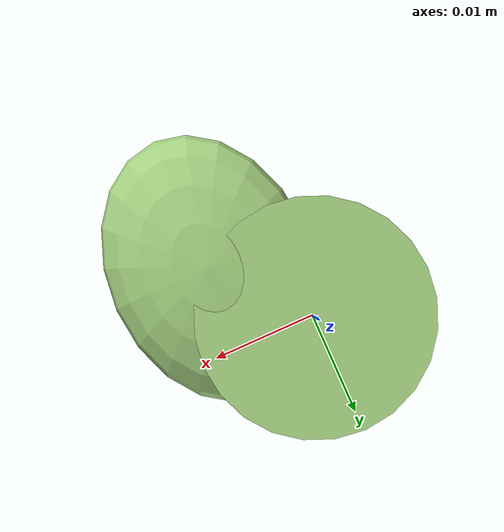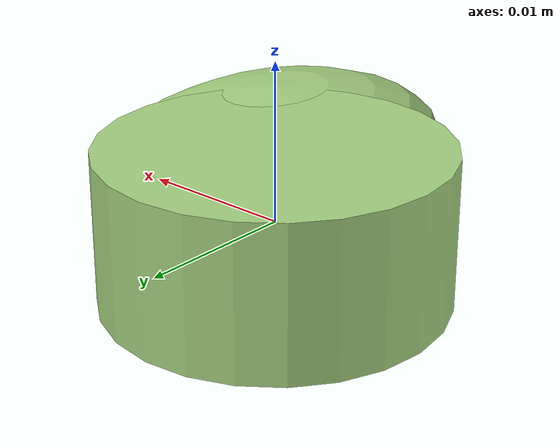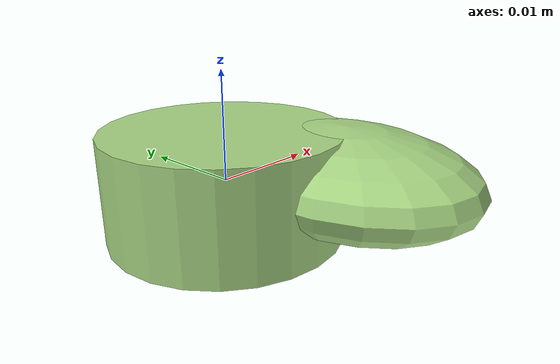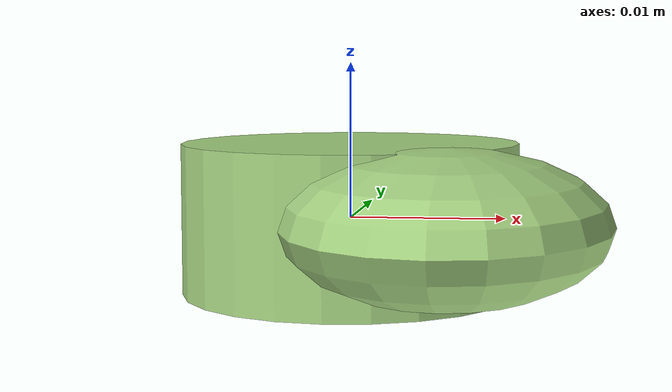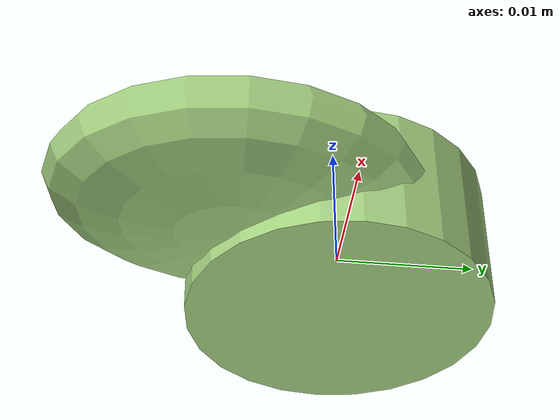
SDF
<?xml version="1.0" ?>
<!-- |    This document was autogenerated by xmacro from data/veggie_template/veggie_base.sdf.xacro  | -->
<!-- |    EDITING THIS FILE BY HAND IS NOT RECOMMENDED                                               | -->
<sdf version="1.8">
	<!-- Parameters -->
	<!-- Base -->
	<!-- Joint 0 -->
	<!-- Link 1 -->
	<!-- Joint 1 -->
	<!-- Link 2 -->
	<!-- Primitives -->
	<!-- All dimensions are half -->
	<!-- Object -->
	<model name="veggie">
		<!-- link0 -->
		<link name="link0">
			<inertial>
				<mass>0.0036067503461717264</mass>
				<inertia>
					<ixx>1.350351015664093e-07</ixx>
					<ixy>0</ixy>
					<ixz>0</ixz>
					<iyy>1.350351015664093e-07</iyy>
					<iyz>0</iyz>
					<izz>2.1358742967273507e-07</izz>
				</inertia>
			</inertial>
			<visual name="link0_visual">
				<pose>0 0 0 0 0 0</pose>
				<geometry>
					<cylinder>
						<radius>0.010882904082106817</radius>
						<length>0.00969338787090325</length>
					</cylinder>
				</geometry>
				<material>
					<ambient>0.659 0.839 0.514 1</ambient>
					<diffuse>0.659 0.839 0.514 1</diffuse>
					<specular>0 0 0 0</specular>
					<emissive>0 0 0 1</emissive>
				</material>
			</visual>
			<collision name="link0_collision">
				<pose>0 0 0 0 0 0 </pose>
				<geometry>
					<cylinder>
						<radius>0.010882904082106817</radius>
						<length>0.00969338787090325</length>
					</cylinder>
				</geometry>
			</collision>
		</link>
		<!-- link1 -->
		<joint name="joint0" type="fixed">
			<pose relative_to="link0">0.006970167283971404 -0.008007549439561829 0.0005745151145926124 0.0 0.0 0.0</pose>
			<parent>link0</parent>
			<child>link1</child>
		</joint>
		<link name="link1">
			<pose relative_to="joint0">0 0 0 0 0 0</pose>
			<inertial>
				<mass>0.0024069136358056903</mass>
				<inertia>
					<ixx>9.250760371551715e-08</ixx>
					<ixy>0</ixy>
					<ixz>0</ixz>
					<iyy>5.5278502986686996e-08</iyy>
					<iyz>0</iyz>
					<izz>1.2821077424174125e-07</izz>
				</inertia>
			</inertial>
			<visual name="link1_visual">
				<pose>0 0 0 0 0 0</pose>
				<geometry>
					<ellipsoid>
						<radii>0.009721129109035411 0.013108706724120067 0.004509146276436269</radii>
					</ellipsoid>
				</geometry>
				<material>
					<ambient>0.659 0.839 0.514 1</ambient>
					<diffuse>0.659 0.839 0.514 1</diffuse>
					<specular>0 0 0 0</specular>
					<emissive>0 0 0 1</emissive>
				</material>
			</visual>
			<collision name="link1_collision">
				<pose>0 0 0 0 0 0 </pose>
				<geometry>
					<ellipsoid>
						<radii>0.009721129109035411 0.013108706724120067 0.004509146276436269</radii>
					</ellipsoid>
				</geometry>
			</collision>
		</link>
		<!-- link2 -->
	</model>
</sdf>
